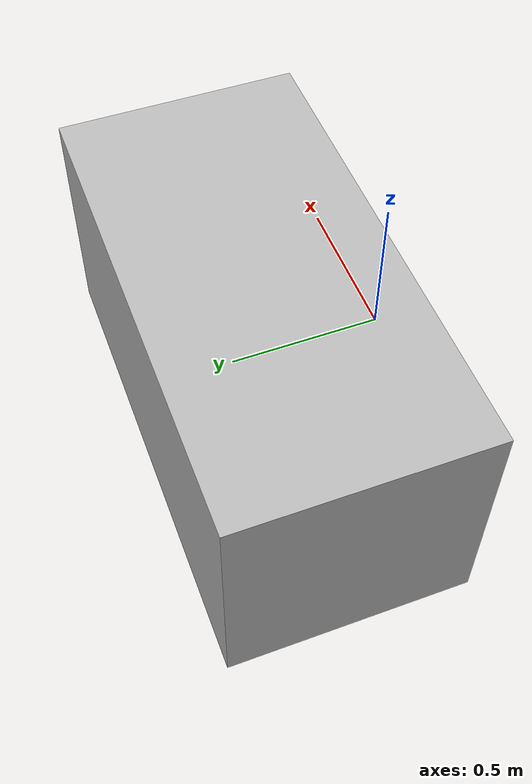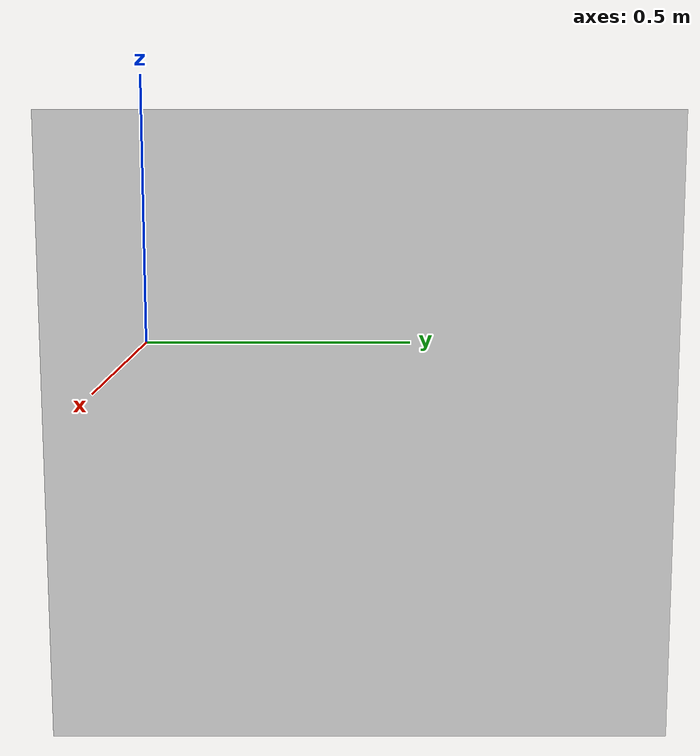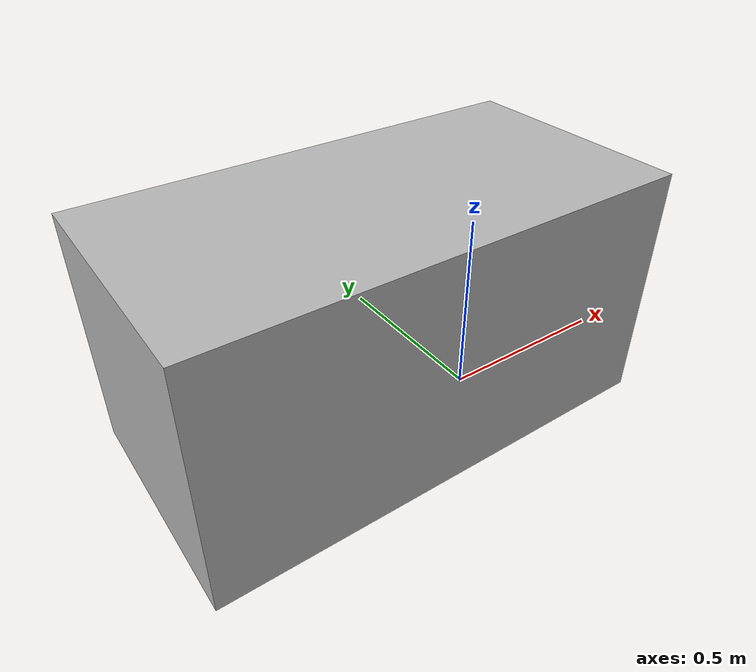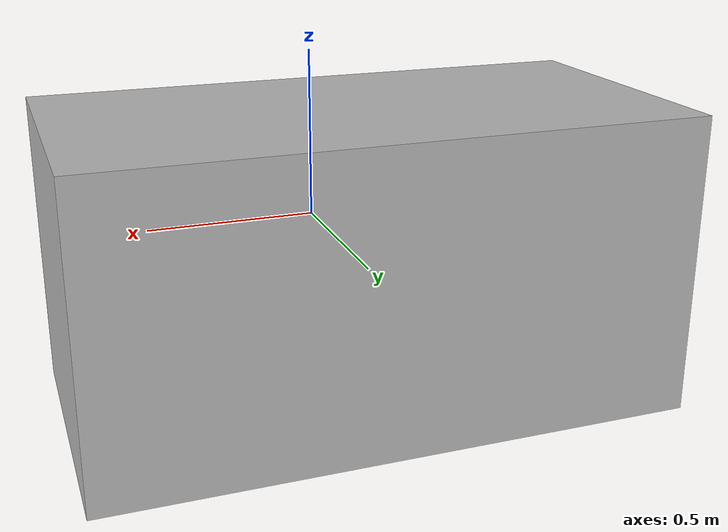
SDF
<?xml version='1.0' encoding='utf-8'?>
<sdf version="1.6">
  <model name="AdjTable">
   <static>true</static>
    <link name="body">
      <pose>0 0 0 0 0 0</pose>

      <visual name="visual">
        <geometry>
          <mesh>
            <uri>model://AdjTable/meshes/AdjTable.obj</uri>
          </mesh>
        </geometry>
      </visual>

      <collision name="collision">
        <geometry>
          <mesh>
            <uri>model://AdjTable/meshes/AdjTable_Col.obj</uri>
          </mesh>
        </geometry>
      </collision>

    </link>
  </model>
</sdf>
